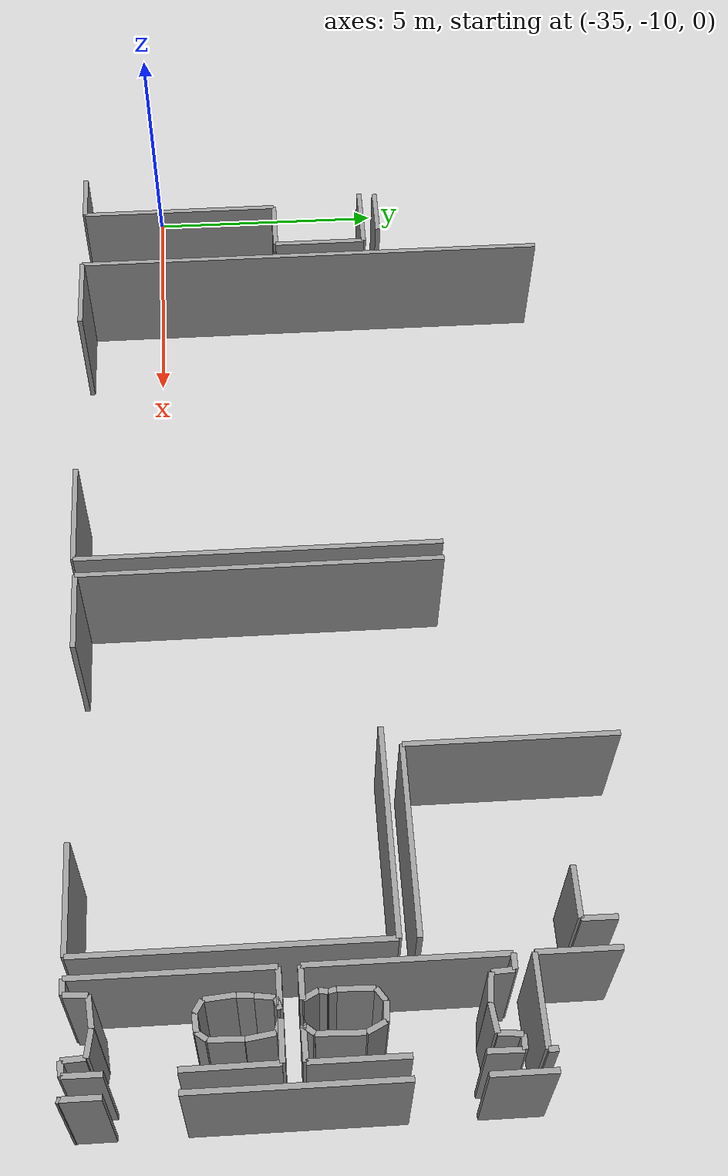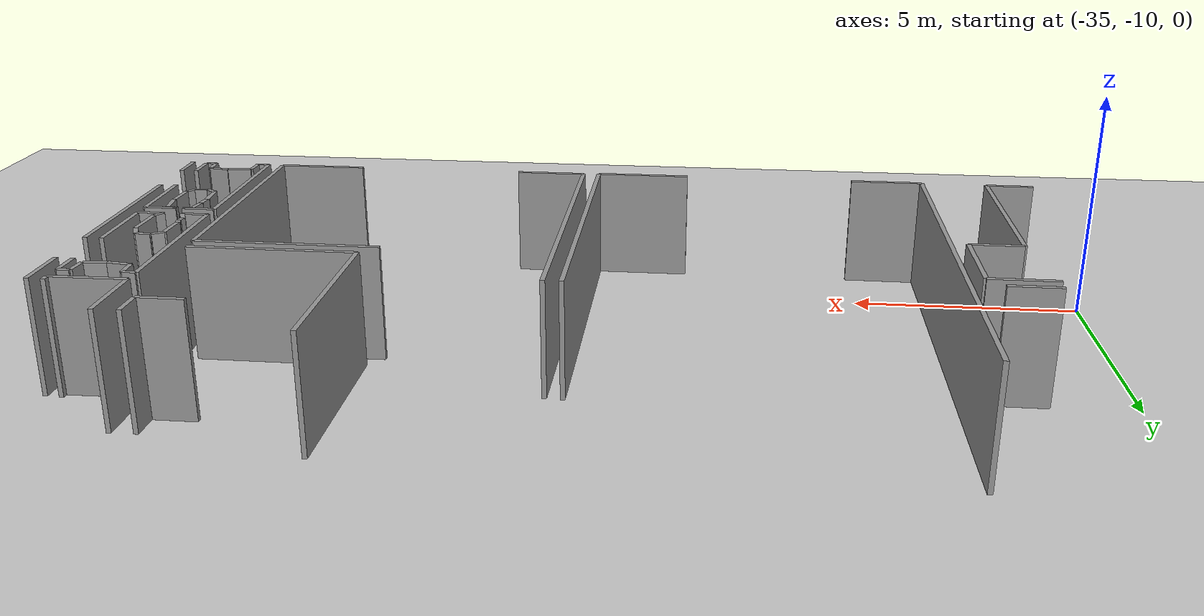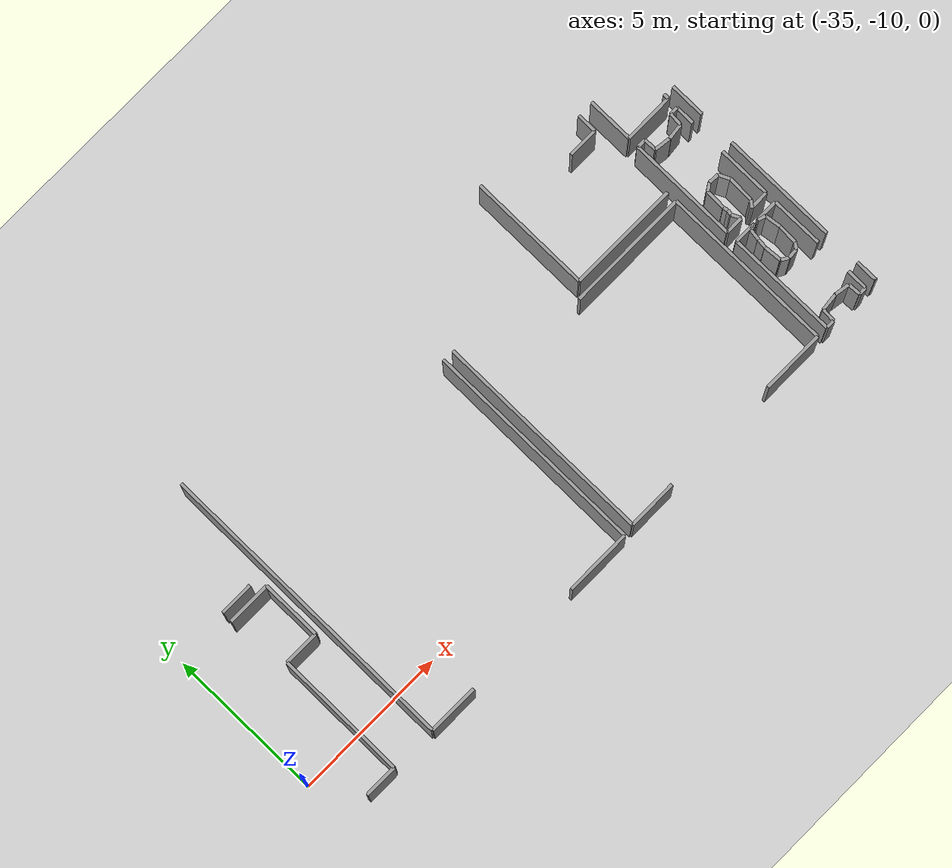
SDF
<sdf version="1.6">
 <world name="default">
  <model name="ground_plane">
   <static>1</static>
   <link name="link">
    <collision name="collision">
     <geometry><plane><normal>0 0 1</normal><size>100 100</size></plane></geometry>
     <surface><friction><ode><mu>100</mu><mu2>50</mu2></ode></friction></surface>
    </collision>
    <visual name="visual">
     <cast_shadows>0</cast_shadows>
     <geometry><plane><normal>0 0 1</normal><size>100 100</size></plane></geometry>
     <material>
      <script><uri>file://media/materials/scripts/gazebo.material</uri><name>Gazebo/Grey</name></script>
     </material>
    </visual>
   </link>
  </model>
  <model name="0510034692_Layout1">
   <static>1</static>
   <link name="Wall_66">
    <collision name="Wall_66_Collision">
     <geometry><box><size>1.41544927032 0.1 2.5</size></box></geometry>
     <pose>0.707724635162 0 1.25 0 0 0</pose>
    </collision>
    <visual name="Wall_66_Visual">
     <pose>0.707724635162 0 1.25 0 0 0</pose>
     <geometry><box><size>1.41544927032 0.1 2.5</size></box></geometry>
     <material>
      <script><uri>file://media/materials/scripts/gazebo.material</uri><name>Gazebo/Grey</name></script>
      <ambient>1 1 1 1</ambient>
     </material>
    </visual>
    <pose>23.1077962007 -17.8406245995 0 0 0 0.0</pose>
   </link>
   <link name="Wall_67">
    <collision name="Wall_67_Collision">
     <geometry><box><size>1.92617838848 0.1 2.5</size></box></geometry>
     <pose>0.963089194241 0 1.25 0 0 0</pose>
    </collision>
    <visual name="Wall_67_Visual">
     <pose>0.963089194241 0 1.25 0 0 0</pose>
     <geometry><box><size>1.92617838848 0.1 2.5</size></box></geometry>
     <material>
      <script><uri>file://media/materials/scripts/gazebo.material</uri><name>Gazebo/Grey</name></script>
      <ambient>1 1 1 1</ambient>
     </material>
    </visual>
    <pose>24.523245471 -17.8406245995 0 0 0 -1.57079632679</pose>
   </link>
   <link name="Wall_68">
    <collision name="Wall_68_Collision">
     <geometry><box><size>1.12360405995 0.1 2.5</size></box></geometry>
     <pose>0.561802029974 0 1.25 0 0 0</pose>
    </collision>
    <visual name="Wall_68_Visual">
     <pose>0.561802029974 0 1.25 0 0 0</pose>
     <geometry><box><size>1.12360405995 0.1 2.5</size></box></geometry>
     <material>
      <script><uri>file://media/materials/scripts/gazebo.material</uri><name>Gazebo/Grey</name></script>
      <ambient>1 1 1 1</ambient>
     </material>
    </visual>
    <pose>24.523245471 -19.766802988 0 0 0 3.14159265359</pose>
   </link>
   <link name="Wall_69">
    <collision name="Wall_69_Collision">
     <geometry><box><size>4.1879787689 0.1 2.5</size></box></geometry>
     <pose>2.09398938445 0 1.25 0 0 0</pose>
    </collision>
    <visual name="Wall_69_Visual">
     <pose>2.09398938445 0 1.25 0 0 0</pose>
     <geometry><box><size>4.1879787689 0.1 2.5</size></box></geometry>
     <material>
      <script><uri>file://media/materials/scripts/gazebo.material</uri><name>Gazebo/Grey</name></script>
      <ambient>1 1 1 1</ambient>
     </material>
    </visual>
    <pose>23.3996414111 -19.766802988 0 0 0 -1.57079632679</pose>
   </link>
   <link name="Wall_70">
    <collision name="Wall_70_Collision">
     <geometry><box><size>1.06523501787 0.1 2.5</size></box></geometry>
     <pose>0.532617508936 0 1.25 0 0 0</pose>
    </collision>
    <visual name="Wall_70_Visual">
     <pose>0.532617508936 0 1.25 0 0 0</pose>
     <geometry><box><size>1.06523501787 0.1 2.5</size></box></geometry>
     <material>
      <script><uri>file://media/materials/scripts/gazebo.material</uri><name>Gazebo/Grey</name></script>
      <ambient>1 1 1 1</ambient>
     </material>
    </visual>
    <pose>23.3996414111 -23.9547817569 0 0 0 3.14159265359</pose>
   </link>
   <link name="Wall_78">
    <collision name="Wall_78_Collision">
     <geometry><box><size>1.07462482029 0.1 2.5</size></box></geometry>
     <pose>0.537312410147 0 1.25 0 0 0</pose>
    </collision>
    <visual name="Wall_78_Visual">
     <pose>0.537312410147 0 1.25 0 0 0</pose>
     <geometry><box><size>1.07462482029 0.1 2.5</size></box></geometry>
     <material>
      <script><uri>file://media/materials/scripts/gazebo.material</uri><name>Gazebo/Grey</name></script>
      <ambient>1 1 1 1</ambient>
     </material>
    </visual>
    <pose>24.2080526438 -17.5013228201 0 0 0 3.14159265359</pose>
   </link>
   <link name="Wall_103">
    <collision name="Wall_103_Collision">
     <geometry><box><size>9.88022926345 0.1 2.5</size></box></geometry>
     <pose>4.94011463172 0 1.25 0 0 0</pose>
    </collision>
    <visual name="Wall_103_Visual">
     <pose>4.94011463172 0 1.25 0 0 0</pose>
     <geometry><box><size>9.88022926345 0.1 2.5</size></box></geometry>
     <material>
      <script><uri>file://media/materials/scripts/gazebo.material</uri><name>Gazebo/Grey</name></script>
      <ambient>1 1 1 1</ambient>
     </material>
    </visual>
    <pose>24.888051984 -23.9839662779 0 0 0 1.57079632679</pose>
   </link>
   <link name="Wall_109">
    <collision name="Wall_109_Collision">
     <geometry><box><size>7.1136635583 0.1 2.5</size></box></geometry>
     <pose>3.55683177915 0 1.25 0 0 0</pose>
    </collision>
    <visual name="Wall_109_Visual">
     <pose>3.55683177915 0 1.25 0 0 0</pose>
     <geometry><box><size>7.1136635583 0.1 2.5</size></box></geometry>
     <material>
      <script><uri>file://media/materials/scripts/gazebo.material</uri><name>Gazebo/Grey</name></script>
      <ambient>1 1 1 1</ambient>
     </material>
    </visual>
    <pose>32.5420098491 -16.8826109741 0 0 0 -1.57079632679</pose>
   </link>
   <link name="Wall_110">
    <collision name="Wall_110_Collision">
     <geometry><box><size>2.13770272139 0.1 2.5</size></box></geometry>
     <pose>1.0688513607 0 1.25 0 0 0</pose>
    </collision>
    <visual name="Wall_110_Visual">
     <pose>1.0688513607 0 1.25 0 0 0</pose>
     <geometry><box><size>2.13770272139 0.1 2.5</size></box></geometry>
     <material>
      <script><uri>file://media/materials/scripts/gazebo.material</uri><name>Gazebo/Grey</name></script>
      <ambient>1 1 1 1</ambient>
     </material>
    </visual>
    <pose>32.5420098491 -23.9962745324 0 0 0 3.14159265359</pose>
   </link>
   <link name="Wall_111">
    <collision name="Wall_111_Collision">
     <geometry><box><size>1.63260312585 0.1 2.5</size></box></geometry>
     <pose>0.816301562924 0 1.25 0 0 0</pose>
    </collision>
    <visual name="Wall_111_Visual">
     <pose>0.816301562924 0 1.25 0 0 0</pose>
     <geometry><box><size>1.63260312585 0.1 2.5</size></box></geometry>
     <material>
      <script><uri>file://media/materials/scripts/gazebo.material</uri><name>Gazebo/Grey</name></script>
      <ambient>1 1 1 1</ambient>
     </material>
    </visual>
    <pose>26.520608713 -23.9962745324 0 0 0 3.13405354569</pose>
   </link>
   <link name="Wall_112">
    <collision name="Wall_112_Collision">
     <geometry><box><size>7.05161472879 0.1 2.5</size></box></geometry>
     <pose>3.5258073644 0 1.25 0 0 0</pose>
    </collision>
    <visual name="Wall_112_Visual">
     <pose>3.5258073644 0 1.25 0 0 0</pose>
     <geometry><box><size>7.05161472879 0.1 2.5</size></box></geometry>
     <material>
      <script><uri>file://media/materials/scripts/gazebo.material</uri><name>Gazebo/Grey</name></script>
      <ambient>1 1 1 1</ambient>
     </material>
    </visual>
    <pose>32.9099885927 -23.9503406341 0 0 0 1.57079632679</pose>
   </link>
   <link name="Wall_117">
    <collision name="Wall_117_Collision">
     <geometry><box><size>3.92988609155 0.1 2.5</size></box></geometry>
     <pose>1.96494304577 0 1.25 0 0 0</pose>
    </collision>
    <visual name="Wall_117_Visual">
     <pose>1.96494304577 0 1.25 0 0 0</pose>
     <geometry><box><size>3.92988609155 0.1 2.5</size></box></geometry>
     <material>
      <script><uri>file://media/materials/scripts/gazebo.material</uri><name>Gazebo/Grey</name></script>
      <ambient>1 1 1 1</ambient>
     </material>
    </visual>
    <pose>36.4597145754 -18.4003329573 0 0 0 0.0</pose>
   </link>
   <link name="Wall_118">
    <collision name="Wall_118_Collision">
     <geometry><box><size>5.54823122769 0.1 2.5</size></box></geometry>
     <pose>2.77411561385 0 1.25 0 0 0</pose>
    </collision>
    <visual name="Wall_118_Visual">
     <pose>2.77411561385 0 1.25 0 0 0</pose>
     <geometry><box><size>5.54823122769 0.1 2.5</size></box></geometry>
     <material>
      <script><uri>file://media/materials/scripts/gazebo.material</uri><name>Gazebo/Grey</name></script>
      <ambient>1 1 1 1</ambient>
     </material>
    </visual>
    <pose>40.3896006669 -18.4003329573 0 0 0 -1.57079632679</pose>
   </link>
   <link name="Wall_119">
    <collision name="Wall_119_Collision">
     <geometry><box><size>2.02743598756 0.1 2.5</size></box></geometry>
     <pose>1.01371799378 0 1.25 0 0 0</pose>
    </collision>
    <visual name="Wall_119_Visual">
     <pose>1.01371799378 0 1.25 0 0 0</pose>
     <geometry><box><size>2.02743598756 0.1 2.5</size></box></geometry>
     <material>
      <script><uri>file://media/materials/scripts/gazebo.material</uri><name>Gazebo/Grey</name></script>
      <ambient>1 1 1 1</ambient>
     </material>
    </visual>
    <pose>40.3896006669 -23.948564185 0 0 0 3.14159265359</pose>
   </link>
   <link name="Wall_120">
    <collision name="Wall_120_Collision">
     <geometry><box><size>1.58928849716 0.1 2.5</size></box></geometry>
     <pose>0.794644248578 0 1.25 0 0 0</pose>
    </collision>
    <visual name="Wall_120_Visual">
     <pose>0.794644248578 0 1.25 0 0 0</pose>
     <geometry><box><size>1.58928849716 0.1 2.5</size></box></geometry>
     <material>
      <script><uri>file://media/materials/scripts/gazebo.material</uri><name>Gazebo/Grey</name></script>
      <ambient>1 1 1 1</ambient>
     </material>
    </visual>
    <pose>34.499276097 -23.948564185 0 0 0 -3.14047488958</pose>
   </link>
   <link name="Wall_121">
    <collision name="Wall_121_Collision">
     <geometry><box><size>3.91973495379 0.1 2.5</size></box></geometry>
     <pose>1.9598674769 0 1.25 0 0 0</pose>
    </collision>
    <visual name="Wall_121_Visual">
     <pose>1.9598674769 0 1.25 0 0 0</pose>
     <geometry><box><size>3.91973495379 0.1 2.5</size></box></geometry>
     <material>
      <script><uri>file://media/materials/scripts/gazebo.material</uri><name>Gazebo/Grey</name></script>
      <ambient>1 1 1 1</ambient>
     </material>
    </visual>
    <pose>36.8282008758 -18.0437742438 0 0 0 1.57079632679</pose>
   </link>
   <link name="Wall_126">
    <collision name="Wall_126_Collision">
     <geometry><box><size>0.954587616373 0.1 2.5</size></box></geometry>
     <pose>0.477293808187 0 1.25 0 0 0</pose>
    </collision>
    <visual name="Wall_126_Visual">
     <pose>0.477293808187 0 1.25 0 0 0</pose>
     <geometry><box><size>0.954587616373 0.1 2.5</size></box></geometry>
     <material>
      <script><uri>file://media/materials/scripts/gazebo.material</uri><name>Gazebo/Grey</name></script>
      <ambient>1 1 1 1</ambient>
     </material>
    </visual>
    <pose>39.2718335112 -15.3354506915 0 0 0 0.0</pose>
   </link>
   <link name="Wall_127">
    <collision name="Wall_127_Collision">
     <geometry><box><size>0.630916804802 0.1 2.5</size></box></geometry>
     <pose>0.315458402401 0 1.25 0 0 0</pose>
    </collision>
    <visual name="Wall_127_Visual">
     <pose>0.315458402401 0 1.25 0 0 0</pose>
     <geometry><box><size>0.630916804802 0.1 2.5</size></box></geometry>
     <material>
      <script><uri>file://media/materials/scripts/gazebo.material</uri><name>Gazebo/Grey</name></script>
      <ambient>1 1 1 1</ambient>
     </material>
    </visual>
    <pose>40.2264211276 -15.3354506915 0 0 0 1.56214811119</pose>
   </link>
   <link name="Wall_130">
    <collision name="Wall_130_Collision">
     <geometry><box><size>3.56825722609 0.1 2.5</size></box></geometry>
     <pose>1.78412861304 0 1.25 0 0 0</pose>
    </collision>
    <visual name="Wall_130_Visual">
     <pose>1.78412861304 0 1.25 0 0 0</pose>
     <geometry><box><size>3.56825722609 0.1 2.5</size></box></geometry>
     <material>
      <script><uri>file://media/materials/scripts/gazebo.material</uri><name>Gazebo/Grey</name></script>
      <ambient>1 1 1 1</ambient>
     </material>
    </visual>
    <pose>40.3964526849 -18.0499918156 0 0 0 3.13985018531</pose>
   </link>
   <link name="Wall_131">
    <collision name="Wall_131_Collision">
     <geometry><box><size>0.712863648649 0.1 2.5</size></box></geometry>
     <pose>0.356431824324 0 1.25 0 0 0</pose>
    </collision>
    <visual name="Wall_131_Visual">
     <pose>0.356431824324 0 1.25 0 0 0</pose>
     <geometry><box><size>0.712863648649 0.1 2.5</size></box></geometry>
     <material>
      <script><uri>file://media/materials/scripts/gazebo.material</uri><name>Gazebo/Grey</name></script>
      <ambient>1 1 1 1</ambient>
     </material>
    </visual>
    <pose>42.7040600744 -23.9905645175 0 0 0 1.57079632679</pose>
   </link>
   <link name="Wall_132">
    <collision name="Wall_132_Collision">
     <geometry><box><size>3.73181201616 0.1 2.5</size></box></geometry>
     <pose>1.86590600808 0 1.25 0 0 0</pose>
    </collision>
    <visual name="Wall_132_Visual">
     <pose>1.86590600808 0 1.25 0 0 0</pose>
     <geometry><box><size>3.73181201616 0.1 2.5</size></box></geometry>
     <material>
      <script><uri>file://media/materials/scripts/gazebo.material</uri><name>Gazebo/Grey</name></script>
      <ambient>1 1 1 1</ambient>
     </material>
    </visual>
    <pose>42.7040600744 -22.0774557188 0 0 0 1.57079632679</pose>
   </link>
   <link name="Wall_133">
    <collision name="Wall_133_Collision">
     <geometry><box><size>1.13527786836 0.1 2.5</size></box></geometry>
     <pose>0.567638934181 0 1.25 0 0 0</pose>
    </collision>
    <visual name="Wall_133_Visual">
     <pose>0.567638934181 0 1.25 0 0 0</pose>
     <geometry><box><size>1.13527786836 0.1 2.5</size></box></geometry>
     <material>
      <script><uri>file://media/materials/scripts/gazebo.material</uri><name>Gazebo/Grey</name></script>
      <ambient>1 1 1 1</ambient>
     </material>
    </visual>
    <pose>42.7040600744 -17.16214793 0 0 0 1.57079632679</pose>
   </link>
   <link name="Wall_140">
    <collision name="Wall_140_Collision">
     <geometry><box><size>0.0452569581647 0.1 2.5</size></box></geometry>
     <pose>0.0226284790824 0 1.25 0 0 0</pose>
    </collision>
    <visual name="Wall_140_Visual">
     <pose>0.0226284790824 0 1.25 0 0 0</pose>
     <geometry><box><size>0.0452569581647 0.1 2.5</size></box></geometry>
     <material>
      <script><uri>file://media/materials/scripts/gazebo.material</uri><name>Gazebo/Grey</name></script>
      <ambient>1 1 1 1</ambient>
     </material>
    </visual>
    <pose>42.7257581314 -23.950848191 0 0 0 -2.07081433949</pose>
   </link>
   <link name="Wall_146">
    <collision name="Wall_146_Collision">
     <geometry><box><size>1.48498456393 0.1 2.5</size></box></geometry>
     <pose>0.742492281963 0 1.25 0 0 0</pose>
    </collision>
    <visual name="Wall_146_Visual">
     <pose>0.742492281963 0 1.25 0 0 0</pose>
     <geometry><box><size>1.48498456393 0.1 2.5</size></box></geometry>
     <material>
      <script><uri>file://media/materials/scripts/gazebo.material</uri><name>Gazebo/Grey</name></script>
      <ambient>1 1 1 1</ambient>
     </material>
    </visual>
    <pose>40.7591020811 -16.1833244722 0 0 0 1.57079632679</pose>
   </link>
   <link name="Wall_149">
    <collision name="Wall_149_Collision">
     <geometry><box><size>0.165844213027 0.1 2.5</size></box></geometry>
     <pose>0.0829221065133 0 1.25 0 0 0</pose>
    </collision>
    <visual name="Wall_149_Visual">
     <pose>0.0829221065133 0 1.25 0 0 0</pose>
     <geometry><box><size>0.165844213027 0.1 2.5</size></box></geometry>
     <material>
      <script><uri>file://media/materials/scripts/gazebo.material</uri><name>Gazebo/Grey</name></script>
      <ambient>1 1 1 1</ambient>
     </material>
    </visual>
    <pose>42.3601902831 -16.0050451155 0 0 0 -1.57079632679</pose>
   </link>
   <link name="Wall_150">
    <collision name="Wall_150_Collision">
     <geometry><box><size>1.60113649115 0.1 2.5</size></box></geometry>
     <pose>0.800568245573 0 1.25 0 0 0</pose>
    </collision>
    <visual name="Wall_150_Visual">
     <pose>0.800568245573 0 1.25 0 0 0</pose>
     <geometry><box><size>1.60113649115 0.1 2.5</size></box></geometry>
     <material>
      <script><uri>file://media/materials/scripts/gazebo.material</uri><name>Gazebo/Grey</name></script>
      <ambient>1 1 1 1</ambient>
     </material>
    </visual>
    <pose>42.3601902831 -16.1708893285 0 0 0 -3.13382612723</pose>
   </link>
   <link name="Wall_151">
    <collision name="Wall_151_Collision">
     <geometry><box><size>3.52155657546 0.1 2.5</size></box></geometry>
     <pose>1.76077828773 0 1.25 0 0 0</pose>
    </collision>
    <visual name="Wall_151_Visual">
     <pose>1.76077828773 0 1.25 0 0 0</pose>
     <geometry><box><size>3.52155657546 0.1 2.5</size></box></geometry>
     <material>
      <script><uri>file://media/materials/scripts/gazebo.material</uri><name>Gazebo/Grey</name></script>
      <ambient>1 1 1 1</ambient>
     </material>
    </visual>
    <pose>40.7549147368 -20.0583944199 0 0 0 1.57079632679</pose>
   </link>
   <link name="Wall_152">
    <collision name="Wall_152_Collision">
     <geometry><box><size>0.276787395293 0.1 2.5</size></box></geometry>
     <pose>0.138393697646 0 1.25 0 0 0</pose>
    </collision>
    <visual name="Wall_152_Visual">
     <pose>0.138393697646 0 1.25 0 0 0</pose>
     <geometry><box><size>0.276787395293 0.1 2.5</size></box></geometry>
     <material>
      <script><uri>file://media/materials/scripts/gazebo.material</uri><name>Gazebo/Grey</name></script>
      <ambient>1 1 1 1</ambient>
     </material>
    </visual>
    <pose>40.7549147368 -16.5368378445 0 0 0 -0.0174214376464</pose>
   </link>
   <link name="Wall_153">
    <collision name="Wall_153_Collision">
     <geometry><box><size>0.398874487915 0.1 2.5</size></box></geometry>
     <pose>0.199437243958 0 1.25 0 0 0</pose>
    </collision>
    <visual name="Wall_153_Visual">
     <pose>0.199437243958 0 1.25 0 0 0</pose>
     <geometry><box><size>0.398874487915 0.1 2.5</size></box></geometry>
     <material>
      <script><uri>file://media/materials/scripts/gazebo.material</uri><name>Gazebo/Grey</name></script>
      <ambient>1 1 1 1</ambient>
     </material>
    </visual>
    <pose>41.0316601298 -16.5416596349 0 0 0 -1.52369742636</pose>
   </link>
   <link name="Wall_154">
    <collision name="Wall_154_Collision">
     <geometry><box><size>0.509697578329 0.1 2.5</size></box></geometry>
     <pose>0.254848789164 0 1.25 0 0 0</pose>
    </collision>
    <visual name="Wall_154_Visual">
     <pose>0.254848789164 0 1.25 0 0 0</pose>
     <geometry><box><size>0.509697578329 0.1 2.5</size></box></geometry>
     <material>
      <script><uri>file://media/materials/scripts/gazebo.material</uri><name>Gazebo/Grey</name></script>
      <ambient>1 1 1 1</ambient>
     </material>
    </visual>
    <pose>41.0504397346 -16.9400917917 0 0 0 -0.135594986855</pose>
   </link>
   <link name="Wall_155">
    <collision name="Wall_155_Collision">
     <geometry><box><size>0.505013523842 0.1 2.5</size></box></geometry>
     <pose>0.252506761921 0 1.25 0 0 0</pose>
    </collision>
    <visual name="Wall_155_Visual">
     <pose>0.252506761921 0 1.25 0 0 0</pose>
     <geometry><box><size>0.505013523842 0.1 2.5</size></box></geometry>
     <material>
      <script><uri>file://media/materials/scripts/gazebo.material</uri><name>Gazebo/Grey</name></script>
      <ambient>1 1 1 1</ambient>
     </material>
    </visual>
    <pose>41.5554588378 -17.0089926392 0 0 0 0.112044567676</pose>
   </link>
   <link name="Wall_156">
    <collision name="Wall_156_Collision">
     <geometry><box><size>0.418260790704 0.1 2.5</size></box></geometry>
     <pose>0.209130395352 0 1.25 0 0 0</pose>
    </collision>
    <visual name="Wall_156_Visual">
     <pose>0.209130395352 0 1.25 0 0 0</pose>
     <geometry><box><size>0.418260790704 0.1 2.5</size></box></geometry>
     <material>
      <script><uri>file://media/materials/scripts/gazebo.material</uri><name>Gazebo/Grey</name></script>
      <ambient>1 1 1 1</ambient>
     </material>
    </visual>
    <pose>42.0573057104 -16.9525269354 0 0 0 1.49579278028</pose>
   </link>
   <link name="Wall_157">
    <collision name="Wall_157_Collision">
     <geometry><box><size>0.257279592542 0.1 2.5</size></box></geometry>
     <pose>0.128639796271 0 1.25 0 0 0</pose>
    </collision>
    <visual name="Wall_157_Visual">
     <pose>0.128639796271 0 1.25 0 0 0</pose>
     <geometry><box><size>0.257279592542 0.1 2.5</size></box></geometry>
     <material>
      <script><uri>file://media/materials/scripts/gazebo.material</uri><name>Gazebo/Grey</name></script>
      <ambient>1 1 1 1</ambient>
     </material>
    </visual>
    <pose>42.0886473482 -16.535442063 0 0 0 -0.0241689485479</pose>
   </link>
   <link name="Wall_158">
    <collision name="Wall_158_Collision">
     <geometry><box><size>0.621193712172 0.1 2.5</size></box></geometry>
     <pose>0.310596856086 0 1.25 0 0 0</pose>
    </collision>
    <visual name="Wall_158_Visual">
     <pose>0.310596856086 0 1.25 0 0 0</pose>
     <geometry><box><size>0.621193712172 0.1 2.5</size></box></geometry>
     <material>
      <script><uri>file://media/materials/scripts/gazebo.material</uri><name>Gazebo/Grey</name></script>
      <ambient>1 1 1 1</ambient>
     </material>
    </visual>
    <pose>42.345851801 -16.5416596349 0 0 0 -1.58591264212</pose>
   </link>
   <link name="Wall_159">
    <collision name="Wall_159_Collision">
     <geometry><box><size>1.70894404058 0.1 2.5</size></box></geometry>
     <pose>0.854472020292 0 1.25 0 0 0</pose>
    </collision>
    <visual name="Wall_159_Visual">
     <pose>0.854472020292 0 1.25 0 0 0</pose>
     <geometry><box><size>1.70894404058 0.1 2.5</size></box></geometry>
     <material>
      <script><uri>file://media/materials/scripts/gazebo.material</uri><name>Gazebo/Grey</name></script>
      <ambient>1 1 1 1</ambient>
     </material>
    </visual>
    <pose>42.3395073399 -18.3403143554 0 0 0 -1.57079632679</pose>
   </link>
   <link name="Wall_160">
    <collision name="Wall_160_Collision">
     <geometry><box><size>0.593337434345 0.1 2.5</size></box></geometry>
     <pose>0.296668717173 0 1.25 0 0 0</pose>
    </collision>
    <visual name="Wall_160_Visual">
     <pose>0.296668717173 0 1.25 0 0 0</pose>
     <geometry><box><size>0.593337434345 0.1 2.5</size></box></geometry>
     <material>
      <script><uri>file://media/materials/scripts/gazebo.material</uri><name>Gazebo/Grey</name></script>
      <ambient>1 1 1 1</ambient>
     </material>
    </visual>
    <pose>42.3395073399 -20.0492583959 0 0 0 -3.12063315646</pose>
   </link>
   <link name="Wall_161">
    <collision name="Wall_161_Collision">
     <geometry><box><size>0.235794625821 0.1 2.5</size></box></geometry>
     <pose>0.117897312911 0 1.25 0 0 0</pose>
    </collision>
    <visual name="Wall_161_Visual">
     <pose>0.117897312911 0 1.25 0 0 0</pose>
     <geometry><box><size>0.235794625821 0.1 2.5</size></box></geometry>
     <material>
      <script><uri>file://media/materials/scripts/gazebo.material</uri><name>Gazebo/Grey</name></script>
      <ambient>1 1 1 1</ambient>
     </material>
    </visual>
    <pose>41.7463002275 -20.0616935397 0 0 0 0.884877500833</pose>
   </link>
   <link name="Wall_162">
    <collision name="Wall_162_Collision">
     <geometry><box><size>0.830110463149 0.1 2.5</size></box></geometry>
     <pose>0.415055231575 0 1.25 0 0 0</pose>
    </collision>
    <visual name="Wall_162_Visual">
     <pose>0.415055231575 0 1.25 0 0 0</pose>
     <geometry><box><size>0.830110463149 0.1 2.5</size></box></geometry>
     <material>
      <script><uri>file://media/materials/scripts/gazebo.material</uri><name>Gazebo/Grey</name></script>
      <ambient>1 1 1 1</ambient>
     </material>
    </visual>
    <pose>41.8956488417 -19.8792268386 0 0 0 1.53578463797</pose>
   </link>
   <link name="Wall_163">
    <collision name="Wall_163_Collision">
     <geometry><box><size>0.369154964452 0.1 2.5</size></box></geometry>
     <pose>0.184577482226 0 1.25 0 0 0</pose>
    </collision>
    <visual name="Wall_163_Visual">
     <pose>0.184577482226 0 1.25 0 0 0</pose>
     <geometry><box><size>0.369154964452 0.1 2.5</size></box></geometry>
     <material>
      <script><uri>file://media/materials/scripts/gazebo.material</uri><name>Gazebo/Grey</name></script>
      <ambient>1 1 1 1</ambient>
     </material>
    </visual>
    <pose>41.9247064735 -19.0496251058 0 0 0 2.02445195474</pose>
   </link>
   <link name="Wall_164">
    <collision name="Wall_164_Collision">
     <geometry><box><size>0.332467220302 0.1 2.5</size></box></geometry>
     <pose>0.166233610151 0 1.25 0 0 0</pose>
    </collision>
    <visual name="Wall_164_Visual">
     <pose>0.166233610151 0 1.25 0 0 0</pose>
     <geometry><box><size>0.332467220302 0.1 2.5</size></box></geometry>
     <material>
      <script><uri>file://media/materials/scripts/gazebo.material</uri><name>Gazebo/Grey</name></script>
      <ambient>1 1 1 1</ambient>
     </material>
    </visual>
    <pose>41.7629227156 -18.7178097905 0 0 0 3.07895957829</pose>
   </link>
   <link name="Wall_165">
    <collision name="Wall_165_Collision">
     <geometry><box><size>0.265820594084 0.1 2.5</size></box></geometry>
     <pose>0.132910297042 0 1.25 0 0 0</pose>
    </collision>
    <visual name="Wall_165_Visual">
     <pose>0.132910297042 0 1.25 0 0 0</pose>
     <geometry><box><size>0.265820594084 0.1 2.5</size></box></geometry>
     <material>
      <script><uri>file://media/materials/scripts/gazebo.material</uri><name>Gazebo/Grey</name></script>
      <ambient>1 1 1 1</ambient>
     </material>
    </visual>
    <pose>41.4311074003 -18.6969999581 0 0 0 -2.54498441051</pose>
   </link>
   <link name="Wall_166">
    <collision name="Wall_166_Collision">
     <geometry><box><size>0.643428519657 0.1 2.5</size></box></geometry>
     <pose>0.321714259828 0 1.25 0 0 0</pose>
    </collision>
    <visual name="Wall_166_Visual">
     <pose>0.321714259828 0 1.25 0 0 0</pose>
     <geometry><box><size>0.643428519657 0.1 2.5</size></box></geometry>
     <material>
      <script><uri>file://media/materials/scripts/gazebo.material</uri><name>Gazebo/Grey</name></script>
      <ambient>1 1 1 1</ambient>
     </material>
    </visual>
    <pose>41.2112083787 -18.8463485723 0 0 0 -1.60945871702</pose>
   </link>
   <link name="Wall_167">
    <collision name="Wall_167_Collision">
     <geometry><box><size>0.145949084015 0.1 2.5</size></box></geometry>
     <pose>0.0729745420073 0 1.25 0 0 0</pose>
    </collision>
    <visual name="Wall_167_Visual">
     <pose>0.0729745420073 0 1.25 0 0 0</pose>
     <geometry><box><size>0.145949084015 0.1 2.5</size></box></geometry>
     <material>
      <script><uri>file://media/materials/scripts/gazebo.material</uri><name>Gazebo/Grey</name></script>
      <ambient>1 1 1 1</ambient>
     </material>
    </visual>
    <pose>41.1863380913 -19.4892962597 0 0 0 -1.31232206804</pose>
   </link>
   <link name="Wall_168">
    <collision name="Wall_168_Collision">
     <geometry><box><size>0.152976521853 0.1 2.5</size></box></geometry>
     <pose>0.0764882609266 0 1.25 0 0 0</pose>
    </collision>
    <visual name="Wall_168_Visual">
     <pose>0.0764882609266 0 1.25 0 0 0</pose>
     <geometry><box><size>0.152976521853 0.1 2.5</size></box></geometry>
     <material>
      <script><uri>file://media/materials/scripts/gazebo.material</uri><name>Gazebo/Grey</name></script>
      <ambient>1 1 1 1</ambient>
     </material>
    </visual>
    <pose>41.2236435225 -19.6303970744 0 0 0 -1.78901543014</pose>
   </link>
   <link name="Wall_169">
    <collision name="Wall_169_Collision">
     <geometry><box><size>0.307872320858 0.1 2.5</size></box></geometry>
     <pose>0.153936160429 0 1.25 0 0 0</pose>
    </collision>
    <visual name="Wall_169_Visual">
     <pose>0.153936160429 0 1.25 0 0 0</pose>
     <geometry><box><size>0.307872320858 0.1 2.5</size></box></geometry>
     <material>
      <script><uri>file://media/materials/scripts/gazebo.material</uri><name>Gazebo/Grey</name></script>
      <ambient>1 1 1 1</ambient>
     </material>
    </visual>
    <pose>41.1905254356 -19.7797456886 0 0 0 -1.09516772427</pose>
   </link>
   <link name="Wall_170">
    <collision name="Wall_170_Collision">
     <geometry><box><size>0.576605860566 0.1 2.5</size></box></geometry>
     <pose>0.288302930283 0 1.25 0 0 0</pose>
    </collision>
    <visual name="Wall_170_Visual">
     <pose>0.288302930283 0 1.25 0 0 0</pose>
     <geometry><box><size>0.576605860566 0.1 2.5</size></box></geometry>
     <material>
      <script><uri>file://media/materials/scripts/gazebo.material</uri><name>Gazebo/Grey</name></script>
      <ambient>1 1 1 1</ambient>
     </material>
    </visual>
    <pose>41.3314993611 -20.0534457403 0 0 0 -3.13301011785</pose>
   </link>
   <link name="Wall_171">
    <collision name="Wall_171_Collision">
     <geometry><box><size>3.53310349466 0.1 2.5</size></box></geometry>
     <pose>1.76655174733 0 1.25 0 0 0</pose>
    </collision>
    <visual name="Wall_171_Visual">
     <pose>1.76655174733 0 1.25 0 0 0</pose>
     <geometry><box><size>3.53310349466 0.1 2.5</size></box></geometry>
     <material>
      <script><uri>file://media/materials/scripts/gazebo.material</uri><name>Gazebo/Grey</name></script>
      <ambient>1 1 1 1</ambient>
     </material>
    </visual>
    <pose>40.756183629 -23.9598573258 0 0 0 1.57079632679</pose>
   </link>
   <link name="Wall_172">
    <collision name="Wall_172_Collision">
     <geometry><box><size>0.71628965764 0.1 2.5</size></box></geometry>
     <pose>0.35814482882 0 1.25 0 0 0</pose>
    </collision>
    <visual name="Wall_172_Visual">
     <pose>0.35814482882 0 1.25 0 0 0</pose>
     <geometry><box><size>0.71628965764 0.1 2.5</size></box></geometry>
     <material>
      <script><uri>file://media/materials/scripts/gazebo.material</uri><name>Gazebo/Grey</name></script>
      <ambient>1 1 1 1</ambient>
     </material>
    </visual>
    <pose>40.756183629 -20.4267538311 0 0 0 0.0</pose>
   </link>
   <link name="Wall_173">
    <collision name="Wall_173_Collision">
     <geometry><box><size>0.212488571277 0.1 2.5</size></box></geometry>
     <pose>0.106244285638 0 1.25 0 0 0</pose>
    </collision>
    <visual name="Wall_173_Visual">
     <pose>0.106244285638 0 1.25 0 0 0</pose>
     <geometry><box><size>0.212488571277 0.1 2.5</size></box></geometry>
     <material>
      <script><uri>file://media/materials/scripts/gazebo.material</uri><name>Gazebo/Grey</name></script>
      <ambient>1 1 1 1</ambient>
     </material>
    </visual>
    <pose>41.4724732866 -20.4267538311 0 0 0 -2.84401570444</pose>
   </link>
   <link name="Wall_174">
    <collision name="Wall_174_Collision">
     <geometry><box><size>0.347843560416 0.1 2.5</size></box></geometry>
     <pose>0.173921780208 0 1.25 0 0 0</pose>
    </collision>
    <visual name="Wall_174_Visual">
     <pose>0.173921780208 0 1.25 0 0 0</pose>
     <geometry><box><size>0.347843560416 0.1 2.5</size></box></geometry>
     <material>
      <script><uri>file://media/materials/scripts/gazebo.material</uri><name>Gazebo/Grey</name></script>
      <ambient>1 1 1 1</ambient>
     </material>
    </visual>
    <pose>41.2693236424 -20.4890564391 0 0 0 -1.71465375858</pose>
   </link>
   <link name="Wall_175">
    <collision name="Wall_175_Collision">
     <geometry><box><size>0.295927456756 0.1 2.5</size></box></geometry>
     <pose>0.147963728378 0 1.25 0 0 0</pose>
    </collision>
    <visual name="Wall_175_Visual">
     <pose>0.147963728378 0 1.25 0 0 0</pose>
     <geometry><box><size>0.295927456756 0.1 2.5</size></box></geometry>
     <material>
      <script><uri>file://media/materials/scripts/gazebo.material</uri><name>Gazebo/Grey</name></script>
      <ambient>1 1 1 1</ambient>
     </material>
    </visual>
    <pose>41.2194561782 -20.8333068981 0 0 0 -1.66871568506</pose>
   </link>
   <link name="Wall_176">
    <collision name="Wall_176_Collision">
     <geometry><box><size>0.553591732498 0.1 2.5</size></box></geometry>
     <pose>0.276795866249 0 1.25 0 0 0</pose>
    </collision>
    <visual name="Wall_176_Visual">
     <pose>0.276795866249 0 1.25 0 0 0</pose>
     <geometry><box><size>0.553591732498 0.1 2.5</size></box></geometry>
     <material>
      <script><uri>file://media/materials/scripts/gazebo.material</uri><name>Gazebo/Grey</name></script>
      <ambient>1 1 1 1</ambient>
     </material>
    </visual>
    <pose>41.1905254356 -21.1278167821 0 0 0 -1.48841649192</pose>
   </link>
   <link name="Wall_177">
    <collision name="Wall_177_Collision">
     <geometry><box><size>0.253274065485 0.1 2.5</size></box></geometry>
     <pose>0.126637032743 0 1.25 0 0 0</pose>
    </collision>
    <visual name="Wall_177_Visual">
     <pose>0.126637032743 0 1.25 0 0 0</pose>
     <geometry><box><size>0.253274065485 0.1 2.5</size></box></geometry>
     <material>
      <script><uri>file://media/materials/scripts/gazebo.material</uri><name>Gazebo/Grey</name></script>
      <ambient>1 1 1 1</ambient>
     </material>
    </visual>
    <pose>41.2360786662 -21.6795311189 0 0 0 -0.551589339887</pose>
   </link>
   <link name="Wall_178">
    <collision name="Wall_178_Collision">
     <geometry><box><size>0.312124789422 0.1 2.5</size></box></geometry>
     <pose>0.156062394711 0 1.25 0 0 0</pose>
    </collision>
    <visual name="Wall_178_Visual">
     <pose>0.156062394711 0 1.25 0 0 0</pose>
     <geometry><box><size>0.312124789422 0.1 2.5</size></box></geometry>
     <material>
      <script><uri>file://media/materials/scripts/gazebo.material</uri><name>Gazebo/Grey</name></script>
      <ambient>1 1 1 1</ambient>
     </material>
    </visual>
    <pose>41.4517903435 -21.8122572451 0 0 0 0.0797651474837</pose>
   </link>
   <link name="Wall_179">
    <collision name="Wall_179_Collision">
     <geometry><box><size>0.2165050672 0.1 2.5</size></box></geometry>
     <pose>0.1082525336 0 1.25 0 0 0</pose>
    </collision>
    <visual name="Wall_179_Visual">
     <pose>0.1082525336 0 1.25 0 0 0</pose>
     <geometry><box><size>0.2165050672 0.1 2.5</size></box></geometry>
     <material>
      <script><uri>file://media/materials/scripts/gazebo.material</uri><name>Gazebo/Grey</name></script>
      <ambient>1 1 1 1</ambient>
     </material>
    </visual>
    <pose>41.7629227156 -21.7873869576 0 0 0 0.935148766532</pose>
   </link>
   <link name="Wall_180">
    <collision name="Wall_180_Collision">
     <geometry><box><size>0.6021564223 0.1 2.5</size></box></geometry>
     <pose>0.30107821115 0 1.25 0 0 0</pose>
    </collision>
    <visual name="Wall_180_Visual">
     <pose>0.30107821115 0 1.25 0 0 0</pose>
     <geometry><box><size>0.6021564223 0.1 2.5</size></box></geometry>
     <material>
      <script><uri>file://media/materials/scripts/gazebo.material</uri><name>Gazebo/Grey</name></script>
      <ambient>1 1 1 1</ambient>
     </material>
    </visual>
    <pose>41.8914614974 -21.6131680559 0 0 0 1.52252162604</pose>
   </link>
   <link name="Wall_181">
    <collision name="Wall_181_Collision">
     <geometry><box><size>0.515076112401 0.1 2.5</size></box></geometry>
     <pose>0.257538056201 0 1.25 0 0 0</pose>
    </collision>
    <visual name="Wall_181_Visual">
     <pose>0.257538056201 0 1.25 0 0 0</pose>
     <geometry><box><size>0.515076112401 0.1 2.5</size></box></geometry>
     <material>
      <script><uri>file://media/materials/scripts/gazebo.material</uri><name>Gazebo/Grey</name></script>
      <ambient>1 1 1 1</ambient>
     </material>
    </visual>
    <pose>41.9205191292 -21.0117131441 0 0 0 1.70819910793</pose>
   </link>
   <link name="Wall_182">
    <collision name="Wall_182_Collision">
     <geometry><box><size>0.24918180903 0.1 2.5</size></box></geometry>
     <pose>0.124590904515 0 1.25 0 0 0</pose>
    </collision>
    <visual name="Wall_182_Visual">
     <pose>0.124590904515 0 1.25 0 0 0</pose>
     <geometry><box><size>0.24918180903 0.1 2.5</size></box></geometry>
     <material>
      <script><uri>file://media/materials/scripts/gazebo.material</uri><name>Gazebo/Grey</name></script>
      <ambient>1 1 1 1</ambient>
     </material>
    </visual>
    <pose>41.8499687218 -20.5014915828 0 0 0 2.81984209919</pose>
   </link>
   <link name="Wall_183">
    <collision name="Wall_183_Collision">
     <geometry><box><size>0.721757315906 0.1 2.5</size></box></geometry>
     <pose>0.360878657953 0 1.25 0 0 0</pose>
    </collision>
    <visual name="Wall_183_Visual">
     <pose>0.360878657953 0 1.25 0 0 0</pose>
     <geometry><box><size>0.721757315906 0.1 2.5</size></box></geometry>
     <material>
      <script><uri>file://media/materials/scripts/gazebo.material</uri><name>Gazebo/Grey</name></script>
      <ambient>1 1 1 1</ambient>
     </material>
    </visual>
    <pose>41.6135741014 -20.422693376 0 0 0 -0.00562581969075</pose>
   </link>
   <link name="Wall_184">
    <collision name="Wall_184_Collision">
     <geometry><box><size>1.66759855082 0.1 2.5</size></box></geometry>
     <pose>0.833799275412 0 1.25 0 0 0</pose>
    </collision>
    <visual name="Wall_184_Visual">
     <pose>0.833799275412 0 1.25 0 0 0</pose>
     <geometry><box><size>1.66759855082 0.1 2.5</size></box></geometry>
     <material>
      <script><uri>file://media/materials/scripts/gazebo.material</uri><name>Gazebo/Grey</name></script>
      <ambient>1 1 1 1</ambient>
     </material>
    </visual>
    <pose>42.3353199956 -20.4267538311 0 0 0 -1.56585039239</pose>
   </link>
   <link name="Wall_185">
    <collision name="Wall_185_Collision">
     <geometry><box><size>0.67620485468 0.1 2.5</size></box></geometry>
     <pose>0.33810242734 0 1.25 0 0 0</pose>
    </collision>
    <visual name="Wall_185_Visual">
     <pose>0.33810242734 0 1.25 0 0 0</pose>
     <geometry><box><size>0.67620485468 0.1 2.5</size></box></geometry>
     <material>
      <script><uri>file://media/materials/scripts/gazebo.material</uri><name>Gazebo/Grey</name></script>
      <ambient>1 1 1 1</ambient>
     </material>
    </visual>
    <pose>42.343567795 -23.2681841772 0 0 0 -1.57680113358</pose>
   </link>
   <link name="Wall_186">
    <collision name="Wall_186_Collision">
     <geometry><box><size>0.245084980064 0.1 2.5</size></box></geometry>
     <pose>0.122542490032 0 1.25 0 0 0</pose>
    </collision>
    <visual name="Wall_186_Visual">
     <pose>0.122542490032 0 1.25 0 0 0</pose>
     <geometry><box><size>0.245084980064 0.1 2.5</size></box></geometry>
     <material>
      <script><uri>file://media/materials/scripts/gazebo.material</uri><name>Gazebo/Grey</name></script>
      <ambient>1 1 1 1</ambient>
     </material>
    </visual>
    <pose>42.3395073399 -23.9443768407 0 0 0 -3.09083276882</pose>
   </link>
   <link name="Wall_187">
    <collision name="Wall_187_Collision">
     <geometry><box><size>0.411260829173 0.1 2.5</size></box></geometry>
     <pose>0.205630414586 0 1.25 0 0 0</pose>
    </collision>
    <visual name="Wall_187_Visual">
     <pose>0.205630414586 0 1.25 0 0 0</pose>
     <geometry><box><size>0.411260829173 0.1 2.5</size></box></geometry>
     <material>
      <script><uri>file://media/materials/scripts/gazebo.material</uri><name>Gazebo/Grey</name></script>
      <ambient>1 1 1 1</ambient>
     </material>
    </visual>
    <pose>42.0947380309 -23.9568119844 0 0 0 1.62110909749</pose>
   </link>
   <link name="Wall_188">
    <collision name="Wall_188_Collision">
     <geometry><box><size>0.474629808747 0.1 2.5</size></box></geometry>
     <pose>0.237314904374 0 1.25 0 0 0</pose>
    </collision>
    <visual name="Wall_188_Visual">
     <pose>0.237314904374 0 1.25 0 0 0</pose>
     <geometry><box><size>0.474629808747 0.1 2.5</size></box></geometry>
     <material>
      <script><uri>file://media/materials/scripts/gazebo.material</uri><name>Gazebo/Grey</name></script>
      <ambient>1 1 1 1</ambient>
     </material>
    </visual>
    <pose>42.0740550877 -23.5460715731 0 0 0 2.9837399086</pose>
   </link>
   <link name="Wall_189">
    <collision name="Wall_189_Collision">
     <geometry><box><size>0.555206744796 0.1 2.5</size></box></geometry>
     <pose>0.277603372398 0 1.25 0 0 0</pose>
    </collision>
    <visual name="Wall_189_Visual">
     <pose>0.277603372398 0 1.25 0 0 0</pose>
     <geometry><box><size>0.555206744796 0.1 2.5</size></box></geometry>
     <material>
      <script><uri>file://media/materials/scripts/gazebo.material</uri><name>Gazebo/Grey</name></script>
      <ambient>1 1 1 1</ambient>
     </material>
    </visual>
    <pose>41.605326302 -23.4714607107 0 0 0 -3.02937064645</pose>
   </link>
   <link name="Wall_190">
    <collision name="Wall_190_Collision">
     <geometry><box><size>0.423905746113 0.1 2.5</size></box></geometry>
     <pose>0.211952873057 0 1.25 0 0 0</pose>
    </collision>
    <visual name="Wall_190_Visual">
     <pose>0.211952873057 0 1.25 0 0 0</pose>
     <geometry><box><size>0.423905746113 0.1 2.5</size></box></geometry>
     <material>
      <script><uri>file://media/materials/scripts/gazebo.material</uri><name>Gazebo/Grey</name></script>
      <ambient>1 1 1 1</ambient>
     </material>
    </visual>
    <pose>41.0536119651 -23.5336364294 0 0 0 -1.62949941709</pose>
   </link>
   <link name="Wall_191">
    <collision name="Wall_191_Collision">
     <geometry><box><size>0.272575061196 0.1 2.5</size></box></geometry>
     <pose>0.136287530598 0 1.25 0 0 0</pose>
    </collision>
    <visual name="Wall_191_Visual">
     <pose>0.136287530598 0 1.25 0 0 0</pose>
     <geometry><box><size>0.272575061196 0.1 2.5</size></box></geometry>
     <material>
      <script><uri>file://media/materials/scripts/gazebo.material</uri><name>Gazebo/Grey</name></script>
      <ambient>1 1 1 1</ambient>
     </material>
    </visual>
    <pose>41.0287416777 -23.9568119844 0 0 0 -3.13041993415</pose>
   </link>
   <pose>-56.4 12.4296829419 0 0 0 0</pose>
  </model>
 </world>
</sdf>
